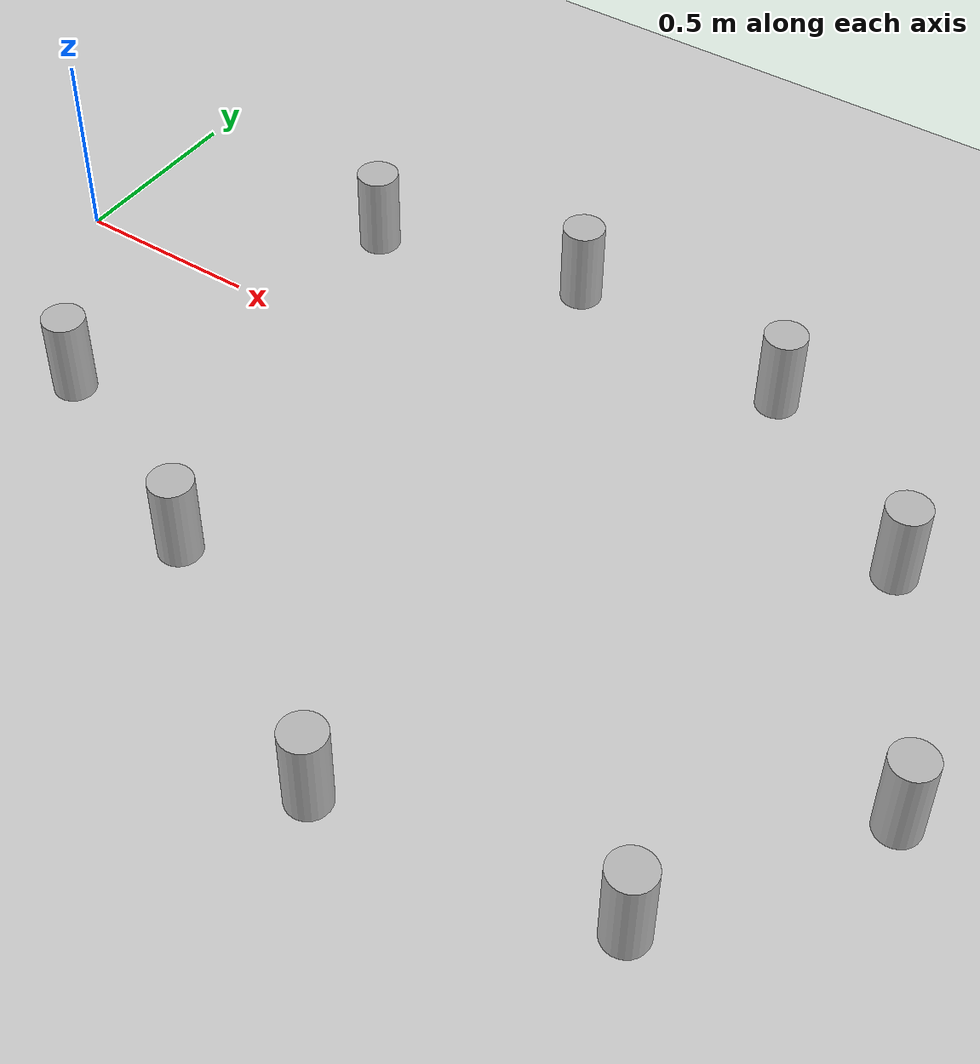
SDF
<sdf version="1.7">
 <world name="default">
  <light name="sun" type="directional">
   <pose>0 0 10 0 -0 0</pose>
   <diffuse>0.8 0.8 0.8 1</diffuse>
   <specular>0.2 0.2 0.2 1</specular>
   <attenuation>
    <range>1000</range>
    <constant>0.9</constant>
    <linear>0.01</linear>
    <quadratic>0.001</quadratic>
   </attenuation>
   <direction>-0.5 0.1 -0.9</direction>
   <spot><inner_angle>0</inner_angle><outer_angle>0</outer_angle><falloff>0</falloff></spot>
  </light>
  <model name="ground_plane">
   <static>1</static>
   <link name="link">
    <collision name="collision">
     <geometry><plane><normal>0 0 1</normal><size>100 100</size></plane></geometry>
     <surface>
      <contact><collide_bitmask>65535</collide_bitmask></contact>
      <friction><ode><mu>100</mu><mu2>50</mu2></ode></friction>
     </surface>
    </collision>
    <visual name="visual">
     <cast_shadows>0</cast_shadows>
     <geometry><plane><normal>0 0 1</normal><size>100 100</size></plane></geometry>
     <material>
      <script><uri>file://media/materials/scripts/gazebo.material</uri><name>Gazebo/Grey</name></script>
     </material>
    </visual>
   </link>
  </model>
  <gravity>0 0 -9.8</gravity>
  <magnetic_field>6e-06 2.3e-05 -4.2e-05</magnetic_field>
  <atmosphere type="adiabatic"/>
  <physics type="ode">
   <max_step_size>0.001</max_step_size>
   <real_time_factor>1</real_time_factor>
   <real_time_update_rate>1000</real_time_update_rate>
  </physics>
  <scene><ambient>0.4 0.4 0.4 1</ambient><background>0.7 0.7 0.7 1</background><shadows>1</shadows></scene>
  <audio><device>default</device></audio>
  <spherical_coordinates>
   <surface_model>EARTH_WGS84</surface_model>
   <latitude_deg>0</latitude_deg>
   <longitude_deg>0</longitude_deg>
   <elevation>0</elevation>
   <heading_deg>0</heading_deg>
  </spherical_coordinates>
  <model name="beer">
   <link name="link">
    <pose>0 0 0.115 0 -0 0</pose>
    <inertial>
     <mass>0.39</mass>
     <inertia><ixx>0.00058</ixx><ixy>0</ixy><ixz>0</ixz><iyy>0.00058</iyy><iyz>0</iyz><izz>0.00019</izz></inertia>
    </inertial>
    <collision name="collision">
     <geometry><cylinder><radius>0.055</radius><length>0.23</length></cylinder></geometry>
    </collision>
    <visual name="visual">
     <geometry><cylinder><radius>0.055</radius><length>0.23</length></cylinder></geometry>
     <material>
      <script>
       <uri>model://beer/materials/scripts</uri>
       <uri>model://beer/materials/textures</uri>
       <name>Beer/Diffuse</name>
      </script>
     </material>
    </visual>
   </link>
   <pose>0.409814 -0.534587 -2e-06 1e-06 -0 -1e-05</pose>
  </model>
  <model name="beer_0">
   <link name="link">
    <pose>0 0 0.115 0 -0 0</pose>
    <inertial>
     <mass>0.39</mass>
     <inertia><ixx>0.00058</ixx><ixy>0</ixy><ixz>0</ixz><iyy>0.00058</iyy><iyz>0</iyz><izz>0.00019</izz></inertia>
    </inertial>
    <collision name="collision">
     <geometry><cylinder><radius>0.055</radius><length>0.23</length></cylinder></geometry>
    </collision>
    <visual name="visual">
     <geometry><cylinder><radius>0.055</radius><length>0.23</length></cylinder></geometry>
     <material>
      <script>
       <uri>model://beer/materials/scripts</uri>
       <uri>model://beer/materials/textures</uri>
       <name>Beer/Diffuse</name>
      </script>
     </material>
    </visual>
   </link>
   <pose>0.989562 -0.809814 -7e-06 -1e-06 -0 -9e-06</pose>
  </model>
  <model name="beer_1">
   <link name="link">
    <pose>0 0 0.115 0 -0 0</pose>
    <inertial>
     <mass>0.39</mass>
     <inertia><ixx>0.00058</ixx><ixy>0</ixy><ixz>0</ixz><iyy>0.00058</iyy><iyz>0</iyz><izz>0.00019</izz></inertia>
    </inertial>
    <collision name="collision">
     <geometry><cylinder><radius>0.055</radius><length>0.23</length></cylinder></geometry>
    </collision>
    <visual name="visual">
     <geometry><cylinder><radius>0.055</radius><length>0.23</length></cylinder></geometry>
     <material>
      <script>
       <uri>model://beer/materials/scripts</uri>
       <uri>model://beer/materials/textures</uri>
       <name>Beer/Diffuse</name>
      </script>
     </material>
    </visual>
   </link>
   <pose>1.66226 -1.19379 -2e-06 0 -0 -9e-06</pose>
  </model>
  <model name="beer_2">
   <link name="link">
    <pose>0 0 0.115 0 -0 0</pose>
    <inertial>
     <mass>0.39</mass>
     <inertia><ixx>0.00058</ixx><ixy>0</ixy><ixz>0</ixz><iyy>0.00058</iyy><iyz>0</iyz><izz>0.00019</izz></inertia>
    </inertial>
    <collision name="collision">
     <geometry><cylinder><radius>0.055</radius><length>0.23</length></cylinder></geometry>
    </collision>
    <visual name="visual">
     <geometry><cylinder><radius>0.055</radius><length>0.23</length></cylinder></geometry>
     <material>
      <script>
       <uri>model://beer/materials/scripts</uri>
       <uri>model://beer/materials/textures</uri>
       <name>Beer/Diffuse</name>
      </script>
     </material>
    </visual>
   </link>
   <pose>0.700625 0.370574 -7e-06 -1e-06 -0 -8e-06</pose>
  </model>
  <model name="beer_3">
   <link name="link">
    <pose>0 0 0.115 0 -0 0</pose>
    <inertial>
     <mass>0.39</mass>
     <inertia><ixx>0.00058</ixx><ixy>0</ixy><ixz>0</ixz><iyy>0.00058</iyy><iyz>0</iyz><izz>0.00019</izz></inertia>
    </inertial>
    <collision name="collision">
     <geometry><cylinder><radius>0.055</radius><length>0.23</length></cylinder></geometry>
    </collision>
    <visual name="visual">
     <geometry><cylinder><radius>0.055</radius><length>0.23</length></cylinder></geometry>
     <material>
      <script>
       <uri>model://beer/materials/scripts</uri>
       <uri>model://beer/materials/textures</uri>
       <name>Beer/Diffuse</name>
      </script>
     </material>
    </visual>
   </link>
   <pose>1.27513 0.486266 -2e-06 1e-06 0 -7e-06</pose>
  </model>
  <model name="beer_4">
   <link name="link">
    <pose>0 0 0.115 0 -0 0</pose>
    <inertial>
     <mass>0.39</mass>
     <inertia><ixx>0.00058</ixx><ixy>0</ixy><ixz>0</ixz><iyy>0.00058</iyy><iyz>0</iyz><izz>0.00019</izz></inertia>
    </inertial>
    <collision name="collision">
     <geometry><cylinder><radius>0.055</radius><length>0.23</length></cylinder></geometry>
    </collision>
    <visual name="visual">
     <geometry><cylinder><radius>0.055</radius><length>0.23</length></cylinder></geometry>
     <material>
      <script>
       <uri>model://beer/materials/scripts</uri>
       <uri>model://beer/materials/textures</uri>
       <name>Beer/Diffuse</name>
      </script>
     </material>
    </visual>
   </link>
   <pose>1.89968 0.409143 -7e-06 -1e-06 -0 -6e-06</pose>
  </model>
  <model name="beer_5">
   <link name="link">
    <pose>0 0 0.115 0 -0 0</pose>
    <inertial>
     <mass>0.39</mass>
     <inertia><ixx>0.00058</ixx><ixy>0</ixy><ixz>0</ixz><iyy>0.00058</iyy><iyz>0</iyz><izz>0.00019</izz></inertia>
    </inertial>
    <collision name="collision">
     <geometry><cylinder><radius>0.055</radius><length>0.23</length></cylinder></geometry>
    </collision>
    <visual name="visual">
     <geometry><cylinder><radius>0.055</radius><length>0.23</length></cylinder></geometry>
     <material>
      <script>
       <uri>model://beer/materials/scripts</uri>
       <uri>model://beer/materials/textures</uri>
       <name>Beer/Diffuse</name>
      </script>
     </material>
    </visual>
   </link>
   <pose>2.36607 -1.09638 -2e-06 0 -0 -5e-06</pose>
  </model>
  <model name="beer_6">
   <link name="link">
    <pose>0 0 0.115 0 -0 0</pose>
    <inertial>
     <mass>0.39</mass>
     <inertia><ixx>0.00058</ixx><ixy>0</ixy><ixz>0</ixz><iyy>0.00058</iyy><iyz>0</iyz><izz>0.00019</izz></inertia>
    </inertial>
    <collision name="collision">
     <geometry><cylinder><radius>0.055</radius><length>0.23</length></cylinder></geometry>
    </collision>
    <visual name="visual">
     <geometry><cylinder><radius>0.055</radius><length>0.23</length></cylinder></geometry>
     <material>
      <script>
       <uri>model://beer/materials/scripts</uri>
       <uri>model://beer/materials/textures</uri>
       <name>Beer/Diffuse</name>
      </script>
     </material>
    </visual>
   </link>
   <pose>2.6947 -0.56788 -7e-06 -0 -0 -4e-06</pose>
  </model>
  <model name="beer_7">
   <link name="link">
    <pose>0 0 0.115 0 -0 0</pose>
    <inertial>
     <mass>0.39</mass>
     <inertia><ixx>0.00058</ixx><ixy>0</ixy><ixz>0</ixz><iyy>0.00058</iyy><iyz>0</iyz><izz>0.00019</izz></inertia>
    </inertial>
    <collision name="collision">
     <geometry><cylinder><radius>0.055</radius><length>0.23</length></cylinder></geometry>
    </collision>
    <visual name="visual">
     <geometry><cylinder><radius>0.055</radius><length>0.23</length></cylinder></geometry>
     <material>
      <script>
       <uri>model://beer/materials/scripts</uri>
       <uri>model://beer/materials/textures</uri>
       <name>Beer/Diffuse</name>
      </script>
     </material>
    </visual>
   </link>
   <pose>2.39412 0.049413 -2e-06 0 -0 -3e-06</pose>
  </model>
 </world>
</sdf>
